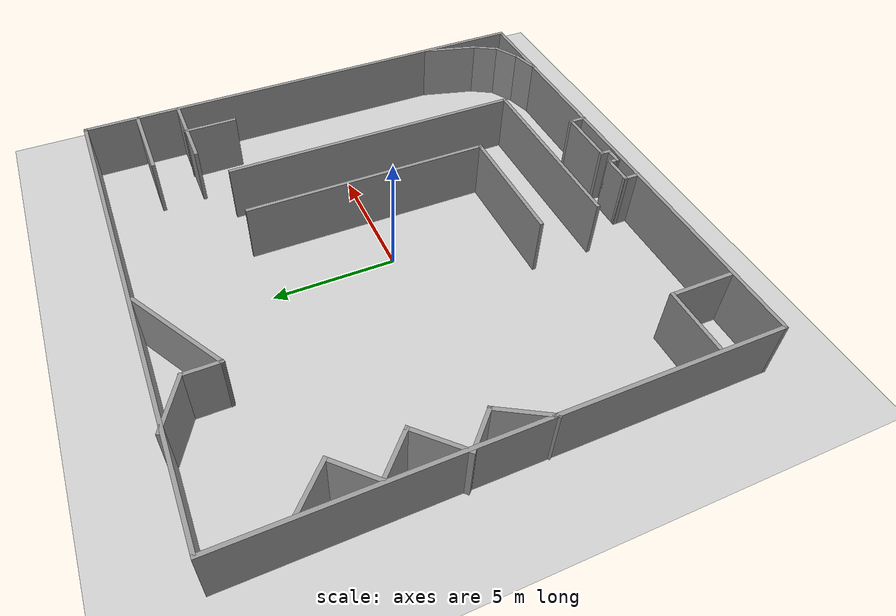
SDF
<sdf version="1.7">
 <world name="default">
  <light name="sun" type="directional">
   <pose>0 0 10 0 -0 0</pose>
   <diffuse>0.8 0.8 0.8 1</diffuse>
   <specular>0.2 0.2 0.2 1</specular>
   <attenuation>
    <range>1000</range>
    <constant>0.9</constant>
    <linear>0.01</linear>
    <quadratic>0.001</quadratic>
   </attenuation>
   <direction>-0.5 0.1 -0.9</direction>
   <spot><inner_angle>0</inner_angle><outer_angle>0</outer_angle><falloff>0</falloff></spot>
  </light>
  <model name="ground_plane">
   <static>1</static>
   <link name="link">
    <collision name="collision">
     <geometry><plane><normal>0 0 1</normal><size>100 100</size></plane></geometry>
     <surface>
      <contact><collide_bitmask>65535</collide_bitmask></contact>
      <friction><ode><mu>100</mu><mu2>50</mu2></ode></friction>
     </surface>
    </collision>
    <visual name="visual">
     <cast_shadows>0</cast_shadows>
     <geometry><plane><normal>0 0 1</normal><size>100 100</size></plane></geometry>
     <material>
      <script><uri>file://media/materials/scripts/gazebo.material</uri><name>Gazebo/Grey</name></script>
     </material>
    </visual>
   </link>
  </model>
  <gravity>0 0 -9.8</gravity>
  <magnetic_field>6e-06 2.3e-05 -4.2e-05</magnetic_field>
  <atmosphere type="adiabatic"/>
  <physics type="ode">
   <max_step_size>0.001</max_step_size>
   <real_time_factor>1</real_time_factor>
   <real_time_update_rate>1000</real_time_update_rate>
  </physics>
  <scene><ambient>0.4 0.4 0.4 1</ambient><background>0.7 0.7 0.7 1</background><shadows>1</shadows></scene>
  <spherical_coordinates>
   <surface_model>EARTH_WGS84</surface_model>
   <latitude_deg>0</latitude_deg>
   <longitude_deg>0</longitude_deg>
   <elevation>0</elevation>
   <heading_deg>0</heading_deg>
  </spherical_coordinates>
  <model name="wall">
   <pose>-0.06852 0.054714 0 0 -0 0</pose>
   <link name="Wall_0">
    <collision name="Wall_0_Collision">
     <geometry><box><size>20.15 0.15 2.5</size></box></geometry>
     <pose>0 0 1.25 0 -0 0</pose>
    </collision>
    <visual name="Wall_0_Visual">
     <pose>0 0 1.25 0 -0 0</pose>
     <geometry><box><size>20.15 0.15 2.5</size></box></geometry>
     <material>
      <script><uri>file://media/materials/scripts/gazebo.material</uri><name>Gazebo/Grey</name></script>
      <ambient>1 1 1 1</ambient>
     </material>
     <meta><layer>0</layer></meta>
    </visual>
    <pose>-9.93148 -0.054714 0 0 -0 1.5708</pose>
   </link>
   <link name="Wall_1">
    <collision name="Wall_1_Collision">
     <geometry><box><size>20.15 0.15 2.5</size></box></geometry>
     <pose>0 0 1.25 0 -0 0</pose>
    </collision>
    <visual name="Wall_1_Visual">
     <pose>0 0 1.25 0 -0 0</pose>
     <geometry><box><size>20.15 0.15 2.5</size></box></geometry>
     <material>
      <script><uri>file://media/materials/scripts/gazebo.material</uri><name>Gazebo/Grey</name></script>
      <ambient>1 1 1 1</ambient>
     </material>
     <meta><layer>0</layer></meta>
    </visual>
    <pose>0.068523 9.94529 0 0 -0 0</pose>
   </link>
   <link name="Wall_11">
    <collision name="Wall_11_Collision">
     <geometry><box><size>2.75 0.15 2.5</size></box></geometry>
     <pose>0 0 1.25 0 -0 0</pose>
    </collision>
    <visual name="Wall_11_Visual">
     <pose>0 0 1.25 0 -0 0</pose>
     <geometry><box><size>2.75 0.15 2.5</size></box></geometry>
     <material>
      <script><uri>file://media/materials/scripts/gazebo.material</uri><name>Gazebo/Grey</name></script>
      <ambient>1 1 1 1</ambient>
     </material>
     <meta><layer>0</layer></meta>
    </visual>
    <pose>-8.59174 -7.46666 0 0 -0 0</pose>
   </link>
   <link name="Wall_12">
    <collision name="Wall_12_Collision">
     <geometry><box><size>2.75 0.15 2.5</size></box></geometry>
     <pose>0 0 1.25 0 -0 0</pose>
    </collision>
    <visual name="Wall_12_Visual">
     <pose>0 0 1.25 0 -0 0</pose>
     <geometry><box><size>2.75 0.15 2.5</size></box></geometry>
     <material>
      <script><uri>file://media/materials/scripts/gazebo.material</uri><name>Gazebo/Grey</name></script>
      <ambient>1 1 1 1</ambient>
     </material>
     <meta><layer>0</layer></meta>
    </visual>
    <pose>-7.29174 -8.76666 0 0 -0 -1.5708</pose>
   </link>
   <link name="Wall_18">
    <collision name="Wall_18_Collision">
     <geometry><box><size>1.25 0.15 2.5</size></box></geometry>
     <pose>0 0 1.25 0 -0 0</pose>
    </collision>
    <visual name="Wall_18_Visual">
     <pose>0 0 1.25 0 -0 0</pose>
     <geometry><box><size>1.25 0.15 2.5</size></box></geometry>
     <material>
      <script><uri>file://media/materials/scripts/gazebo.material</uri><name>Gazebo/Grey</name></script>
      <ambient>1 1 1 1</ambient>
     </material>
     <meta><layer>0</layer></meta>
    </visual>
    <pose>7.40545 -9.90142 0 0 -0 0.261799</pose>
   </link>
   <link name="Wall_19">
    <collision name="Wall_19_Collision">
     <geometry><box><size>1.25 0.15 2.5</size></box></geometry>
     <pose>0 0 1.25 0 -0 0</pose>
    </collision>
    <visual name="Wall_19_Visual">
     <pose>0 0 1.25 0 -0 0</pose>
     <geometry><box><size>1.25 0.15 2.5</size></box></geometry>
     <material>
      <script><uri>file://media/materials/scripts/gazebo.material</uri><name>Gazebo/Grey</name></script>
      <ambient>1 1 1 1</ambient>
     </material>
     <meta><layer>0</layer></meta>
    </visual>
    <pose>8.41302 -9.48407 0 0 -0 0.523599</pose>
   </link>
   <link name="Wall_2">
    <collision name="Wall_2_Collision">
     <geometry><box><size>20.15 0.15 2.5</size></box></geometry>
     <pose>0 0 1.25 0 -0 0</pose>
    </collision>
    <visual name="Wall_2_Visual">
     <pose>0 0 1.25 0 -0 0</pose>
     <geometry><box><size>20.15 0.15 2.5</size></box></geometry>
     <material>
      <script><uri>file://media/materials/scripts/gazebo.material</uri><name>Gazebo/Grey</name></script>
      <ambient>1 1 1 1</ambient>
     </material>
     <meta><layer>0</layer></meta>
    </visual>
    <pose>10.0685 -0.054714 0 0 -0 -1.5708</pose>
   </link>
   <link name="Wall_20">
    <collision name="Wall_20_Collision">
     <geometry><box><size>1.25 0.15 2.5</size></box></geometry>
     <pose>0 0 1.25 0 -0 0</pose>
    </collision>
    <visual name="Wall_20_Visual">
     <pose>0 0 1.25 0 -0 0</pose>
     <geometry><box><size>1.25 0.15 2.5</size></box></geometry>
     <material>
      <script><uri>file://media/materials/scripts/gazebo.material</uri><name>Gazebo/Grey</name></script>
      <ambient>1 1 1 1</ambient>
     </material>
     <meta><layer>0</layer></meta>
    </visual>
    <pose>9.16433 -8.73275 0 0 -0 1.0472</pose>
   </link>
   <link name="Wall_21">
    <collision name="Wall_21_Collision">
     <geometry><box><size>2.5 0.15 2.5</size></box></geometry>
     <pose>0 0 1.25 0 -0 0</pose>
    </collision>
    <visual name="Wall_21_Visual">
     <pose>0 0 1.25 0 -0 0</pose>
     <geometry><box><size>2.5 0.15 2.5</size></box></geometry>
     <material>
      <script><uri>file://media/materials/scripts/gazebo.material</uri><name>Gazebo/Grey</name></script>
      <ambient>1 1 1 1</ambient>
     </material>
     <meta><layer>0</layer></meta>
    </visual>
    <pose>9.74345 -7.12148 0 0 -0 1.309</pose>
   </link>
   <link name="Wall_23">
    <collision name="Wall_23_Collision">
     <geometry><box><size>0.75 0.15 2.5</size></box></geometry>
     <pose>0 0 1.25 0 -0 0</pose>
    </collision>
    <visual name="Wall_23_Visual">
     <pose>0 0 1.25 0 -0 0</pose>
     <geometry><box><size>0.75 0.15 2.5</size></box></geometry>
     <material>
      <script><uri>file://media/materials/scripts/gazebo.material</uri><name>Gazebo/Grey</name></script>
      <ambient>1 1 1 1</ambient>
     </material>
     <meta><layer>0</layer></meta>
    </visual>
    <pose>-1.49781 -9.76677 0 0 -0 1.5708</pose>
   </link>
   <link name="Wall_24">
    <collision name="Wall_24_Collision">
     <geometry><box><size>1.25 0.15 2.5</size></box></geometry>
     <pose>0 0 1.25 0 -0 0</pose>
    </collision>
    <visual name="Wall_24_Visual">
     <pose>0 0 1.25 0 -0 0</pose>
     <geometry><box><size>1.25 0.15 2.5</size></box></geometry>
     <material>
      <script><uri>file://media/materials/scripts/gazebo.material</uri><name>Gazebo/Grey</name></script>
      <ambient>1 1 1 1</ambient>
     </material>
     <meta><layer>0</layer></meta>
    </visual>
    <pose>-0.947813 -9.46677 0 0 -0 0</pose>
   </link>
   <link name="Wall_25">
    <collision name="Wall_25_Collision">
     <geometry><box><size>0.5 0.15 2.5</size></box></geometry>
     <pose>0 0 1.25 0 -0 0</pose>
    </collision>
    <visual name="Wall_25_Visual">
     <pose>0 0 1.25 0 -0 0</pose>
     <geometry><box><size>0.5 0.15 2.5</size></box></geometry>
     <material>
      <script><uri>file://media/materials/scripts/gazebo.material</uri><name>Gazebo/Grey</name></script>
      <ambient>1 1 1 1</ambient>
     </material>
     <meta><layer>0</layer></meta>
    </visual>
    <pose>-0.397813 -9.64177 0 0 -0 -1.5708</pose>
   </link>
   <link name="Wall_26">
    <collision name="Wall_26_Collision">
     <geometry><box><size>0.75 0.15 2.5</size></box></geometry>
     <pose>0 0 1.25 0 -0 0</pose>
    </collision>
    <visual name="Wall_26_Visual">
     <pose>0 0 1.25 0 -0 0</pose>
     <geometry><box><size>0.75 0.15 2.5</size></box></geometry>
     <material>
      <script><uri>file://media/materials/scripts/gazebo.material</uri><name>Gazebo/Grey</name></script>
      <ambient>1 1 1 1</ambient>
     </material>
     <meta><layer>0</layer></meta>
    </visual>
    <pose>-0.097813 -9.81677 0 0 -0 0</pose>
   </link>
   <link name="Wall_27">
    <collision name="Wall_27_Collision">
     <geometry><box><size>0.5 0.15 2.5</size></box></geometry>
     <pose>0 0 1.25 0 -0 0</pose>
    </collision>
    <visual name="Wall_27_Visual">
     <pose>0 0 1.25 0 -0 0</pose>
     <geometry><box><size>0.5 0.15 2.5</size></box></geometry>
     <material>
      <script><uri>file://media/materials/scripts/gazebo.material</uri><name>Gazebo/Grey</name></script>
      <ambient>1 1 1 1</ambient>
     </material>
     <meta><layer>0</layer></meta>
    </visual>
    <pose>0.202187 -9.64177 0 0 -0 1.5708</pose>
   </link>
   <link name="Wall_28">
    <collision name="Wall_28_Collision">
     <geometry><box><size>2.5 0.15 2.5</size></box></geometry>
     <pose>0 0 1.25 0 -0 0</pose>
    </collision>
    <visual name="Wall_28_Visual">
     <pose>0 0 1.25 0 -0 0</pose>
     <geometry><box><size>2.5 0.15 2.5</size></box></geometry>
     <material>
      <script><uri>file://media/materials/scripts/gazebo.material</uri><name>Gazebo/Grey</name></script>
      <ambient>1 1 1 1</ambient>
     </material>
     <meta><layer>0</layer></meta>
    </visual>
    <pose>1.37719 -9.46677 0 0 -0 0</pose>
   </link>
   <link name="Wall_29">
    <collision name="Wall_29_Collision">
     <geometry><box><size>0.75 0.15 2.5</size></box></geometry>
     <pose>0 0 1.25 0 -0 0</pose>
    </collision>
    <visual name="Wall_29_Visual">
     <pose>0 0 1.25 0 -0 0</pose>
     <geometry><box><size>0.75 0.15 2.5</size></box></geometry>
     <material>
      <script><uri>file://media/materials/scripts/gazebo.material</uri><name>Gazebo/Grey</name></script>
      <ambient>1 1 1 1</ambient>
     </material>
     <meta><layer>0</layer></meta>
    </visual>
    <pose>2.55219 -9.76677 0 0 -0 -1.5708</pose>
   </link>
   <link name="Wall_3">
    <collision name="Wall_3_Collision">
     <geometry><box><size>20.15 0.15 2.5</size></box></geometry>
     <pose>0 0 1.25 0 -0 0</pose>
    </collision>
    <visual name="Wall_3_Visual">
     <pose>0 0 1.25 0 -0 0</pose>
     <geometry><box><size>20.15 0.15 2.5</size></box></geometry>
     <material>
      <script><uri>file://media/materials/scripts/gazebo.material</uri><name>Gazebo/Grey</name></script>
      <ambient>1 1 1 1</ambient>
     </material>
     <meta><layer>0</layer></meta>
    </visual>
    <pose>0.068523 -10.0547 0 0 -0 3.14159</pose>
   </link>
   <link name="Wall_31">
    <collision name="Wall_31_Collision">
     <geometry><box><size>2 0.15 2.5</size></box></geometry>
     <pose>0 0 1.25 0 -0 0</pose>
    </collision>
    <visual name="Wall_31_Visual">
     <pose>0 0 1.25 0 -0 0</pose>
     <geometry><box><size>2 0.15 2.5</size></box></geometry>
     <material>
      <script><uri>file://media/materials/scripts/gazebo.material</uri><name>Gazebo/Grey</name></script>
      <ambient>1 1 1 1</ambient>
     </material>
     <meta><layer>0</layer></meta>
    </visual>
    <pose>-9.20661 6.40662 0 0 -0 -0.785398</pose>
   </link>
   <link name="Wall_32">
    <collision name="Wall_32_Collision">
     <geometry><box><size>2 0.15 2.5</size></box></geometry>
     <pose>0 0 1.25 0 -0 0</pose>
    </collision>
    <visual name="Wall_32_Visual">
     <pose>0 0 1.25 0 -0 0</pose>
     <geometry><box><size>2 0.15 2.5</size></box></geometry>
     <material>
      <script><uri>file://media/materials/scripts/gazebo.material</uri><name>Gazebo/Grey</name></script>
      <ambient>1 1 1 1</ambient>
     </material>
     <meta><layer>0</layer></meta>
    </visual>
    <pose>-9.20661 5.09847 0 0 -0 -2.35619</pose>
   </link>
   <link name="Wall_33">
    <collision name="Wall_33_Collision">
     <geometry><box><size>2 0.15 2.5</size></box></geometry>
     <pose>0 0 1.25 0 -0 0</pose>
    </collision>
    <visual name="Wall_33_Visual">
     <pose>0 0 1.25 0 -0 0</pose>
     <geometry><box><size>2 0.15 2.5</size></box></geometry>
     <material>
      <script><uri>file://media/materials/scripts/gazebo.material</uri><name>Gazebo/Grey</name></script>
      <ambient>1 1 1 1</ambient>
     </material>
     <meta><layer>0</layer></meta>
    </visual>
    <pose>-9.20661 3.79032 0 0 -0 -0.785398</pose>
   </link>
   <link name="Wall_34">
    <collision name="Wall_34_Collision">
     <geometry><box><size>2.25 0.15 2.5</size></box></geometry>
     <pose>0 0 1.25 0 -0 0</pose>
    </collision>
    <visual name="Wall_34_Visual">
     <pose>0 0 1.25 0 -0 0</pose>
     <geometry><box><size>2.25 0.15 2.5</size></box></geometry>
     <material>
      <script><uri>file://media/materials/scripts/gazebo.material</uri><name>Gazebo/Grey</name></script>
      <ambient>1 1 1 1</ambient>
     </material>
     <meta><layer>0</layer></meta>
    </visual>
    <pose>-9.295 2.39379 0 0 -0 -2.35619</pose>
   </link>
   <link name="Wall_35">
    <collision name="Wall_35_Collision">
     <geometry><box><size>1.75 0.15 2.5</size></box></geometry>
     <pose>0 0 1.25 0 -0 0</pose>
    </collision>
    <visual name="Wall_35_Visual">
     <pose>0 0 1.25 0 -0 0</pose>
     <geometry><box><size>1.75 0.15 2.5</size></box></geometry>
     <material>
      <script><uri>file://media/materials/scripts/gazebo.material</uri><name>Gazebo/Grey</name></script>
      <ambient>1 1 1 1</ambient>
     </material>
     <meta><layer>0</layer></meta>
    </visual>
    <pose>-9.47177 1.08564 0 0 -0 -0.785398</pose>
   </link>
   <link name="Wall_36">
    <collision name="Wall_36_Collision">
     <geometry><box><size>2.25 0.15 2.5</size></box></geometry>
     <pose>0 0 1.25 0 -0 0</pose>
    </collision>
    <visual name="Wall_36_Visual">
     <pose>0 0 1.25 0 -0 0</pose>
     <geometry><box><size>2.25 0.15 2.5</size></box></geometry>
     <material>
      <script><uri>file://media/materials/scripts/gazebo.material</uri><name>Gazebo/Grey</name></script>
      <ambient>1 1 1 1</ambient>
     </material>
     <meta><layer>0</layer></meta>
    </visual>
    <pose>-9.43109 -0.389372 0 0 -0 -2.0944</pose>
   </link>
   <link name="Wall_38">
    <collision name="Wall_38_Collision">
     <geometry><box><size>2.25 0.15 2.5</size></box></geometry>
     <pose>0 0 1.25 0 -0 0</pose>
    </collision>
    <visual name="Wall_38_Visual">
     <pose>0 0 1.25 0 -0 0</pose>
     <geometry><box><size>2.25 0.15 2.5</size></box></geometry>
     <material>
      <script><uri>file://media/materials/scripts/gazebo.material</uri><name>Gazebo/Grey</name></script>
      <ambient>1 1 1 1</ambient>
     </material>
     <meta><layer>0</layer></meta>
    </visual>
    <pose>-4.90418 9.51432 0 0 -0 -0.523599</pose>
   </link>
   <link name="Wall_39">
    <collision name="Wall_39_Collision">
     <geometry><box><size>1.5 0.15 2.5</size></box></geometry>
     <pose>0 0 1.25 0 -0 0</pose>
    </collision>
    <visual name="Wall_39_Visual">
     <pose>0 0 1.25 0 -0 0</pose>
     <geometry><box><size>1.5 0.15 2.5</size></box></geometry>
     <material>
      <script><uri>file://media/materials/scripts/gazebo.material</uri><name>Gazebo/Grey</name></script>
      <ambient>1 1 1 1</ambient>
     </material>
     <meta><layer>0</layer></meta>
    </visual>
    <pose>-3.99485 8.31432 0 0 -0 -1.5708</pose>
   </link>
   <link name="Wall_40">
    <collision name="Wall_40_Collision">
     <geometry><box><size>4.5 0.15 2.5</size></box></geometry>
     <pose>0 0 1.25 0 -0 0</pose>
    </collision>
    <visual name="Wall_40_Visual">
     <pose>0 0 1.25 0 -0 0</pose>
     <geometry><box><size>4.5 0.15 2.5</size></box></geometry>
     <material>
      <script><uri>file://media/materials/scripts/gazebo.material</uri><name>Gazebo/Grey</name></script>
      <ambient>1 1 1 1</ambient>
     </material>
     <meta><layer>0</layer></meta>
    </visual>
    <pose>-2.11124 8.72682 0 0 -0 0.523599</pose>
   </link>
   <link name="Wall_5">
    <collision name="Wall_5_Collision">
     <geometry><box><size>3.5 0.15 2.5</size></box></geometry>
     <pose>0 0 1.25 0 -0 0</pose>
    </collision>
    <visual name="Wall_5_Visual">
     <pose>0 0 1.25 0 -0 0</pose>
     <geometry><box><size>3.5 0.15 2.5</size></box></geometry>
     <material>
      <script><uri>file://media/materials/scripts/gazebo.material</uri><name>Gazebo/Grey</name></script>
      <ambient>1 1 1 1</ambient>
     </material>
     <meta><layer>0</layer></meta>
    </visual>
    <pose>8.34549 7.74666 0 0 -0 3.14159</pose>
   </link>
   <link name="Wall_7">
    <collision name="Wall_7_Collision">
     <geometry><box><size>3.5 0.15 2.5</size></box></geometry>
     <pose>0 0 1.25 0 -0 0</pose>
    </collision>
    <visual name="Wall_7_Visual">
     <pose>0 0 1.25 0 -0 0</pose>
     <geometry><box><size>3.5 0.15 2.5</size></box></geometry>
     <material>
      <script><uri>file://media/materials/scripts/gazebo.material</uri><name>Gazebo/Grey</name></script>
      <ambient>1 1 1 1</ambient>
     </material>
     <meta><layer>0</layer></meta>
    </visual>
    <pose>8.39201 5.97875 0 0 -0 3.14159</pose>
   </link>
   <link name="Wall_9">
    <collision name="Wall_9_Collision">
     <geometry><box><size>2.25 0.15 2.5</size></box></geometry>
     <pose>0 0 1.25 0 -0 0</pose>
    </collision>
    <visual name="Wall_9_Visual">
     <pose>0 0 1.25 0 -0 0</pose>
     <geometry><box><size>2.25 0.15 2.5</size></box></geometry>
     <material>
      <script><uri>file://media/materials/scripts/gazebo.material</uri><name>Gazebo/Grey</name></script>
      <ambient>1 1 1 1</ambient>
     </material>
     <meta><layer>0</layer></meta>
    </visual>
    <pose>8.34563 4.97527 0 0 -0 -1.5708</pose>
   </link>
   <static>1</static>
  </model>
  <plugin name="myActorPosesPlugin" filename="libmyActorPosesPlugin.so"/>
  <model name="corridor_withTurn">
   <pose>1.25 -1.25 0 0 -0 0</pose>
   <link name="Wall_10">
    <collision name="Wall_10_Collision">
     <geometry><box><size>10.15 0.15 2.5</size></box></geometry>
     <pose>0 0 1.25 0 -0 0</pose>
    </collision>
    <visual name="Wall_10_Visual">
     <pose>0 0 1.25 0 -0 0</pose>
     <geometry><box><size>10.15 0.15 2.5</size></box></geometry>
     <material>
      <script><uri>file://media/materials/scripts/gazebo.material</uri><name>Gazebo/Grey</name></script>
      <ambient>1 1 1 1</ambient>
     </material>
     <meta><layer>0</layer></meta>
    </visual>
    <pose>1.25 1.25 0 0 -0 -1.5708</pose>
   </link>
   <link name="Wall_12">
    <collision name="Wall_12_Collision">
     <geometry><box><size>7.65 0.15 2.5</size></box></geometry>
     <pose>0 0 1.25 0 -0 0</pose>
    </collision>
    <visual name="Wall_12_Visual">
     <pose>0 0 1.25 0 -0 0</pose>
     <geometry><box><size>7.65 0.15 2.5</size></box></geometry>
     <material>
      <script><uri>file://media/materials/scripts/gazebo.material</uri><name>Gazebo/Grey</name></script>
      <ambient>1 1 1 1</ambient>
     </material>
     <meta><layer>0</layer></meta>
    </visual>
    <pose>-0 -6.25 0 0 -0 3.14159</pose>
   </link>
   <link name="Wall_14">
    <collision name="Wall_14_Collision">
     <geometry><box><size>5.15 0.15 2.5</size></box></geometry>
     <pose>0 0 1.25 0 -0 0</pose>
    </collision>
    <visual name="Wall_14_Visual">
     <pose>0 0 1.25 0 -0 0</pose>
     <geometry><box><size>5.15 0.15 2.5</size></box></geometry>
     <material>
      <script><uri>file://media/materials/scripts/gazebo.material</uri><name>Gazebo/Grey</name></script>
      <ambient>1 1 1 1</ambient>
     </material>
     <meta><layer>0</layer></meta>
    </visual>
    <pose>-1.25 -3.75 0 0 -0 3.14159</pose>
   </link>
   <link name="Wall_8">
    <collision name="Wall_8_Collision">
     <geometry><box><size>12.65 0.15 2.5</size></box></geometry>
     <pose>0 0 1.25 0 -0 0</pose>
    </collision>
    <visual name="Wall_8_Visual">
     <pose>0 0 1.25 0 -0 0</pose>
     <geometry><box><size>12.65 0.15 2.5</size></box></geometry>
     <material>
      <script><uri>file://media/materials/scripts/gazebo.material</uri><name>Gazebo/Grey</name></script>
      <ambient>1 1 1 1</ambient>
     </material>
     <meta><layer>0</layer></meta>
    </visual>
    <pose>3.75 0 0 0 -0 -1.5708</pose>
   </link>
   <static>1</static>
  </model>
 </world>
</sdf>
